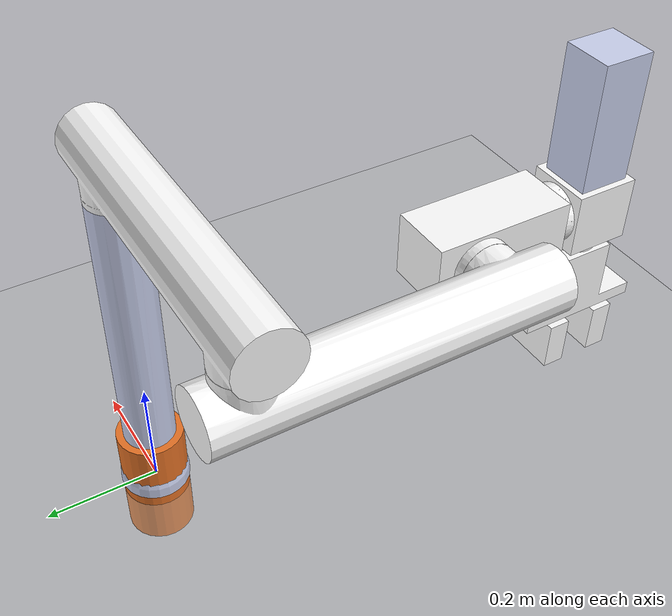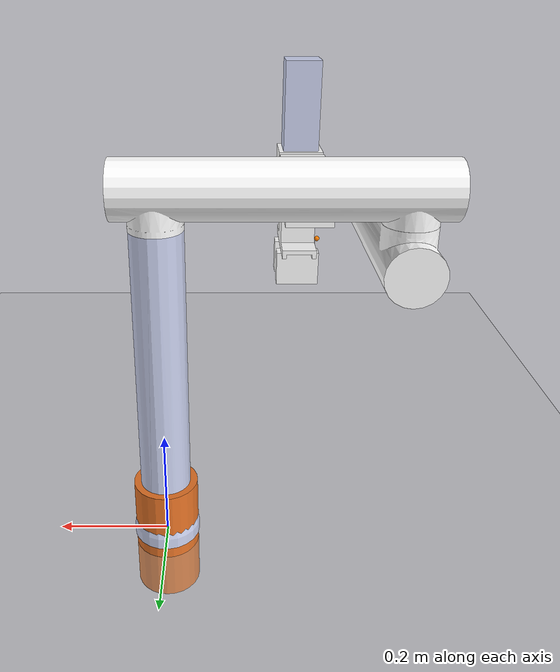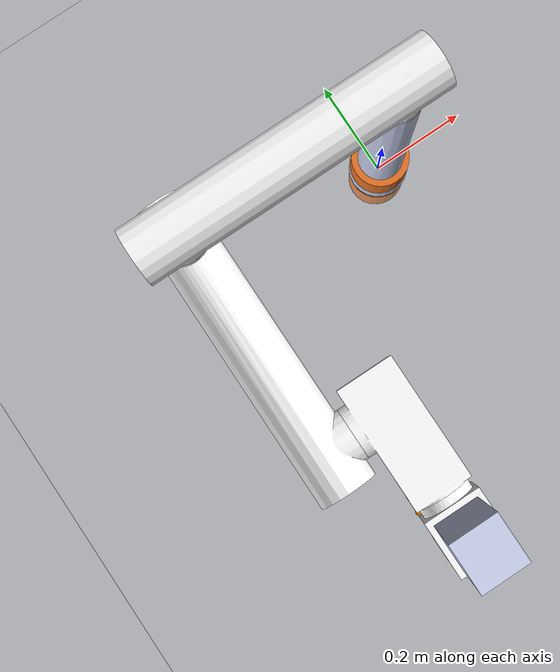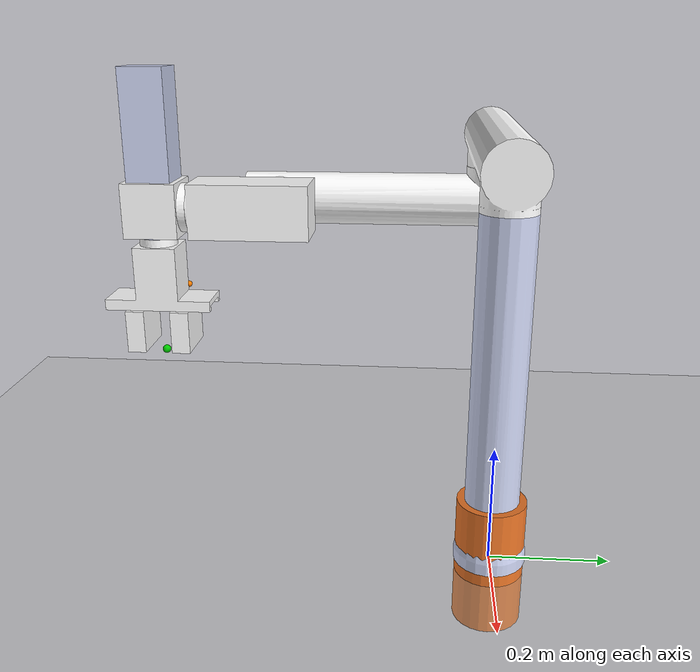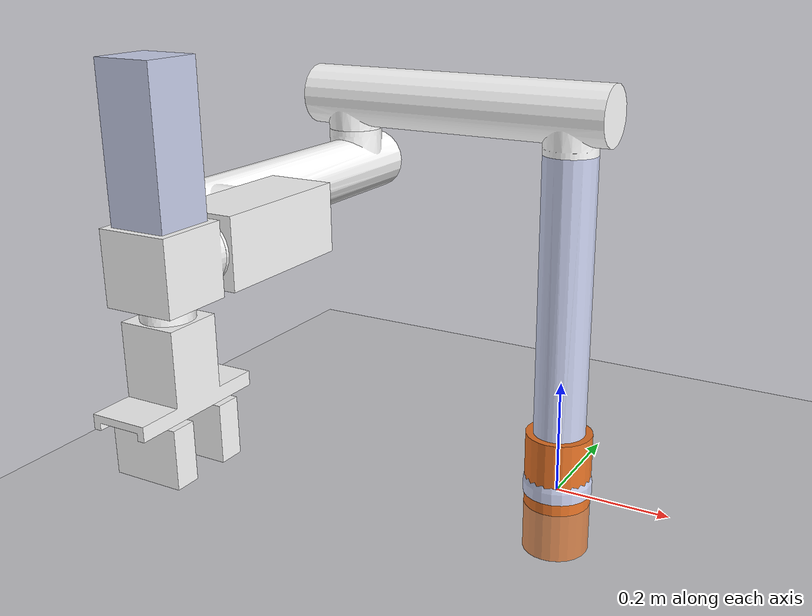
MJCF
<mujoco model="robotic_arm_v7_simple_grasp_scene">
  <compiler angle="radian" autolimits="true" />
  <option timestep="0.002" gravity="0 0 -9.81" integrator="implicitfast" iterations="100" ls_iterations="50" cone="elliptic" />
  <default>
    <joint damping="0.08" armature="0.001" />
    <geom condim="3" friction="1 0.005 0.0001" />
  </default>
  <compiler angle="radian" />
  <asset>
    <mesh name="base_link" content_type="model/stl" file="../assets/meshes/base_link.STL" />
    <mesh name="link1" content_type="model/stl" file="../assets/meshes/link1.STL" />
    <mesh name="link2" content_type="model/stl" file="../assets/meshes/link2.STL" />
    <mesh name="link3" content_type="model/stl" file="../assets/meshes/link3.STL" />
    <mesh name="link4" content_type="model/stl" file="../assets/meshes/link4.STL" />
    <mesh name="link5" content_type="model/stl" file="../assets/meshes/link5.STL" />
    <mesh name="link6" content_type="model/stl" file="../assets/meshes/link6.STL" />
    <mesh name="fin1" content_type="model/stl" file="../assets/meshes/fin1.STL" />
    <mesh name="fin2" content_type="model/stl" file="../assets/meshes/fin2.STL" />
  </asset>
  <worldbody>
    <light name="main_light" pos="0 -1.5 2" dir="0 1 -1.5" />
    <camera name="overview" pos="1.6 -1.8 1.3" euler="1.1 0 0.72" />
    <geom name="ground" type="plane" pos="0 0 -0.02" size="3 3 0.02" rgba="0.75 0.75 0.75 1" friction="3 0.5 0.05" condim="6" solref="0.001 1" solimp="0.99 0.999 0.0001" contype="1" conaffinity="1" />
    <geom type="mesh" rgba="0.792157 0.819608 0.933333 1" mesh="base_link" name="base_link_visual" contype="2" conaffinity="0" group="1" density="0" condim="6" solref="0.001 1" solimp="0.99 0.999 0.0001" friction="5 1 0.1" />
    <body name="link1" pos="0 0 0.6" quat="-3.67321e-06 0 0 1">
      <inertial pos="0.197136 -1.59976e-07 0.0526643" quat="0.5 0.5 0.5 0.5" mass="4.44205" diaginertia="0.1116 0.111433 0.00575246" />
      <joint name="joint1" pos="0 0 0" axis="0 0 -1" range="-3.14 3.14" actuatorfrcrange="-100 100" />
      <geom type="mesh" rgba="1 1 1 1" mesh="link1" name="link1_visual" contype="2" conaffinity="0" group="1" density="0" condim="6" solref="0.001 1" solimp="0.99 0.999 0.0001" friction="5 1 0.1" />
      <body name="link2" pos="0.4 0 0">
        <inertial pos="-0.000738403 0.197136 -0.0634026" quat="0.512794 0.512635 -0.483844 0.490044" mass="4.44205" diaginertia="0.111539 0.111507 0.00574923" />
        <joint name="joint2" pos="0 0 0" axis="0 0 -1" range="-3.14 3.14" actuatorfrcrange="-100 100" />
        <geom type="mesh" rgba="1 1 1 1" mesh="link2" name="link2_visual" contype="2" conaffinity="0" group="1" density="0" condim="6" solref="0.001 1" solimp="0.99 0.999 0.0001" friction="5 1 0.1" />
        <body name="link3" pos="-0.055 0.4 -0.065" quat="0.499998 0.5 0.500002 0.5">
          <inertial pos="0.0398975 0 -0.0626423" quat="0.497692 0.502297 0.502297 0.497692" mass="2.32723" diaginertia="0.0113093 0.0112712 0.00383359" />
          <joint name="joint3" pos="0 0 0" axis="0 0 -1" range="-3.14 3.14" actuatorfrcrange="-100 100" damping="2.5" armature="0.05" />
          <geom type="mesh" rgba="1 1 1 1" mesh="link3" name="link3_visual" contype="2" conaffinity="0" group="1" density="0" condim="6" solref="0.001 1" solimp="0.99 0.999 0.0001" friction="5 1 0.1" />
          <body name="link4" pos="0.16 0 -0.065" quat="0.499998 0.5 0.500002 0.5">
            <inertial pos="0 -1.73683e-12 0.047952" mass="0.455426" diaginertia="0.00111346 0.000921461 0.000888619" />
            <joint name="joint4" pos="0 0 0" axis="0 0 1" range="-3.14 3.14" actuatorfrcrange="-100 100" damping="2.5" armature="0.05" />
            <geom type="mesh" rgba="1 1 1 1" mesh="link4" name="link4_visual" contype="2" conaffinity="0" group="1" density="0" condim="6" solref="0.001 1" solimp="0.99 0.999 0.0001" friction="5 1 0.1" />
            <body name="link5" pos="0.05 -0.05 0.1" quat="0.499998 0.5 0.500002 0.5">
              <inertial pos="0.05 -0.04 0.0484868" mass="1.93924" diaginertia="0.015873 0.015873 0.00205979" />
              <joint name="joint5" pos="0 0 0" axis="0 0 -1" type="slide" range="0 0.2" actuatorfrcrange="-100 100" />
              <geom type="mesh" rgba="0.796078 0.823529 0.937255 1" mesh="link5" name="link5_visual" contype="2" conaffinity="0" group="1" density="0" condim="6" solref="0.001 1" solimp="0.99 0.999 0.0001" friction="5 1 0.1" />
              <body name="link6" pos="0.05 -0.04 -0.11" quat="-2.59734e-06 -0.707105 0.707108 2.59735e-06">
                <inertial pos="0 1.73705e-12 0.0690013" quat="0.707107 0 0 0.707107" mass="0.897727" diaginertia="0.00214144 0.00160944 0.00151936" />
                <joint name="joint6" pos="0 0 0" axis="0 0 1" actuatorfrcrange="-100 100" damping="4.0" armature="0.08" />
                <geom type="mesh" rgba="1 1 1 1" mesh="link6" name="link6_visual" contype="2" conaffinity="0" group="1" density="0" condim="6" solref="0.001 1" solimp="0.99 0.999 0.0001" friction="5 1 0.1" />
                <body name="fin1" pos="-0.1 0.04 0.12" quat="0.499998 -0.5 0.500002 -0.5">
                  <inertial pos="0.04 -0.0468605 0.0575" quat="0 0.707107 0 0.707107" mass="0.301" diaginertia="0.0004287 0.00027036 0.000219794" />
                  <joint name="joint71" pos="0 0 0" axis="0 0 1" type="slide" range="-0.05 0.015" actuatorfrcrange="-100 100" damping="25.0" armature="0.02" />
                  <geom type="mesh" rgba="1 1 1 1" mesh="fin1" name="fin1_visual" contype="2" conaffinity="0" group="1" density="0" condim="6" solref="0.001 1" solimp="0.99 0.999 0.0001" friction="200 20 2" />
                  <site name="left_finger_tip_site" pos="0.04 -0.046 0.0575" size="0.006" rgba="0.8 0 0 1" />
                </body>
                <body name="fin2" pos="-0.1 0.04 0.12" quat="0.499998 -0.5 0.500002 -0.5">
                  <inertial pos="0.04 -0.0468605 0.1425" quat="0 0.707107 0 0.707107" mass="0.301" diaginertia="0.0004287 0.00027036 0.000219794" />
                  <joint name="joint72" pos="0 0 0" axis="0 0 1" type="slide" range="-0.015 0.05" actuatorfrcrange="-100 100" damping="25.0" armature="0.02" />
                  <geom type="mesh" rgba="1 1 1 1" mesh="fin2" name="fin2_visual" contype="2" conaffinity="0" group="1" density="0" condim="6" solref="0.001 1" solimp="0.99 0.999 0.0001" friction="200 20 2" />
                  <site name="right_finger_tip_site" pos="0.04 -0.046 0.1425" size="0.006" rgba="0 0 0.8 1" />
                </body>
                <site name="ee_site" pos="0 0 0.22" size="0.008" rgba="0 0.8 0 1" />
                <site name="peg_tip_site" pos="0.04 -0.046 0.10" size="0.006" rgba="1 0.5 0 1" />
              </body>
            </body>
          </body>
        </body>
      </body>
    </body>
    <body name="grasp_object" pos="0 0 0">
      <freejoint name="grasp_object_freejoint" />
      <geom name="grasp_object_collision" type="cylinder" size="0.058 0.11" mass="0.01" rgba="0.9 0.45 0.15 1" friction="200 20 2" condim="6" solref="0.001 1" solimp="0.99 0.999 0.0001" contype="1" conaffinity="3" />
    </body>
  </worldbody>
  <actuator>
    <motor name="joint1_motor" joint="joint1" ctrllimited="true" ctrlrange="-90 90" />
    <motor name="joint2_motor" joint="joint2" ctrllimited="true" ctrlrange="-90 90" />
    <motor name="joint3_motor" joint="joint3" ctrllimited="true" ctrlrange="-220 220" />
    <motor name="joint4_motor" joint="joint4" ctrllimited="true" ctrlrange="-220 220" />
    <motor name="joint5_motor" joint="joint5" ctrllimited="true" ctrlrange="-180 180" />
    <motor name="joint6_motor" joint="joint6" ctrllimited="true" ctrlrange="-160 160" />
    <motor name="gripper_left_motor" joint="joint71" ctrllimited="true" ctrlrange="-95 95" />
    <motor name="gripper_right_motor" joint="joint72" ctrllimited="true" ctrlrange="-95 95" />
  </actuator>
</mujoco>
